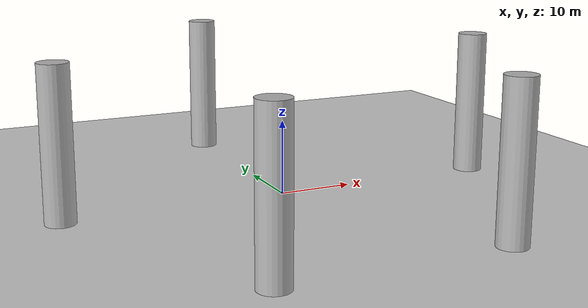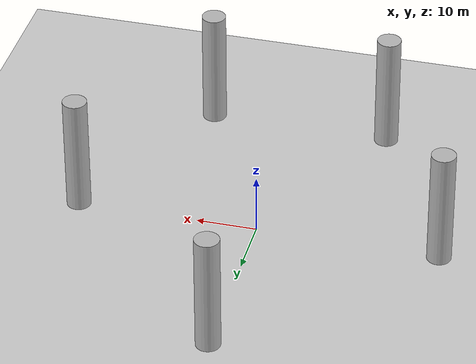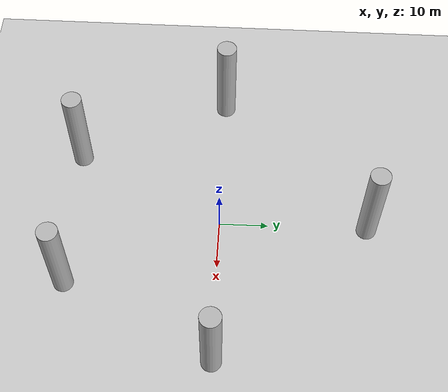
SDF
<sdf version="1.5">
 <world name="default">
  <scene><shadows>false</shadows></scene>
  <include><uri>model://sun</uri></include>
  <include><uri>model://ground_plane</uri></include>
  <include><uri>model://ground_plane</uri><pose>0 0 -0.01 0 0 0</pose></include>
  <include><uri>model://basic_cylinder</uri><pose>15 -30 0 0 0 0</pose></include>
  <include><uri>model://basic_cylinder</uri><pose>30 0 0 0 0 0</pose></include>
  <include><uri>model://basic_cylinder</uri><pose>0 30 0 0 0 0</pose></include>
  <include><uri>model://basic_cylinder</uri><pose>-30 0 0 0 0 0</pose></include>
  <include><uri>model://basic_cylinder</uri><pose>-15 -30 0 0 0 0</pose></include>
 </world>
</sdf>

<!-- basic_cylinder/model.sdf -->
<sdf version="1.6">
  <model name="basic_cylinder">
    <static>true</static>
    <link name="link">
      <pose>0 0 10 0 0 0</pose>
      <collision name="collision">
        <geometry>
          <cylinder>
            <radius>2</radius>
            <length>20</length>
          </cylinder>
        </geometry>
      </collision>
      <visual name='visual'>
        <geometry>
          <cylinder>
            <radius>2</radius>
            <length>20</length>
          </cylinder>
        </geometry>
      </visual>
    </link>
  </model>
</sdf>
